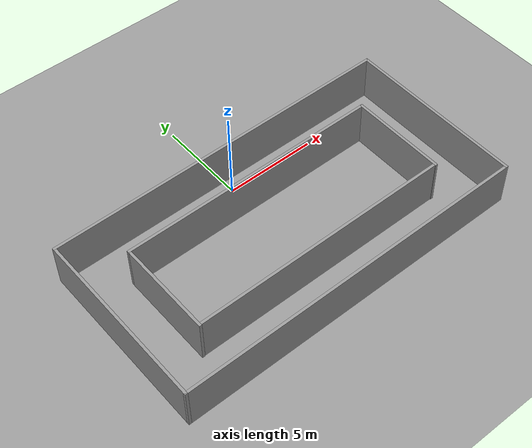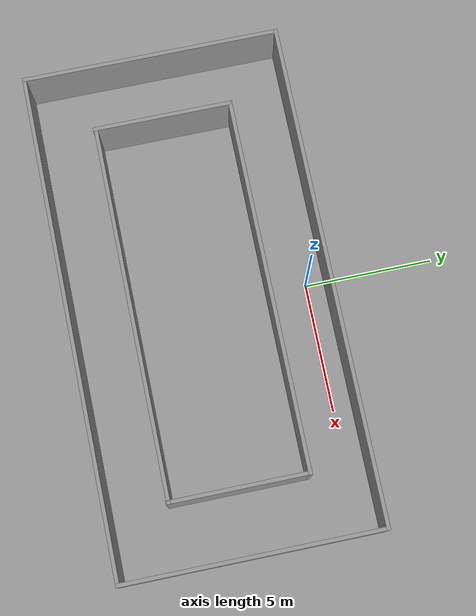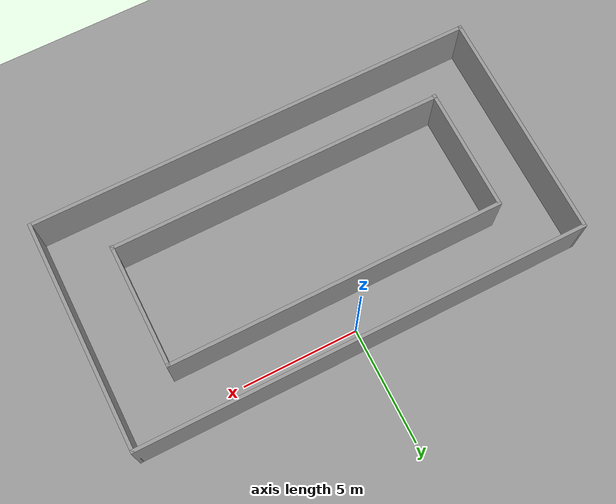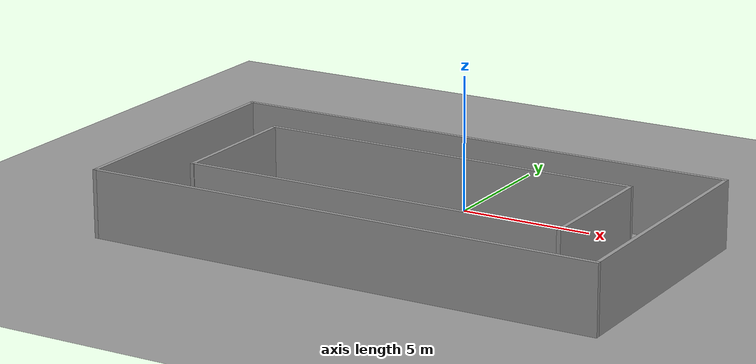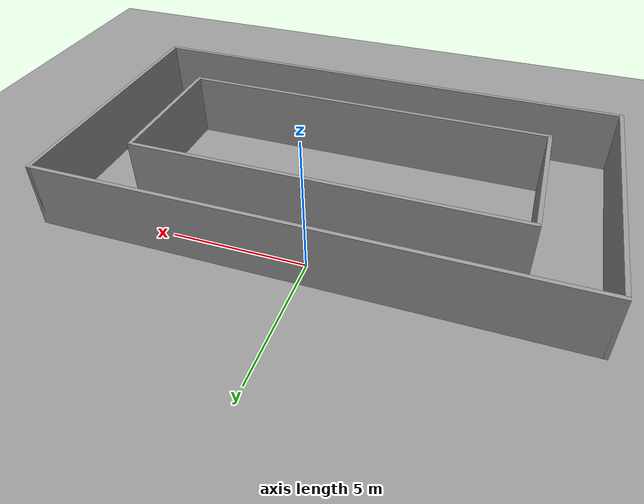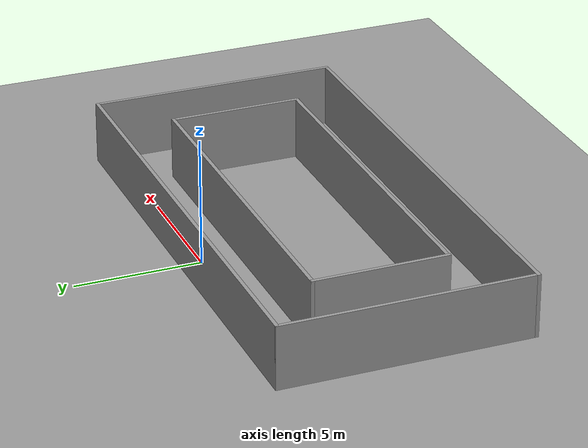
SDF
<sdf version="1.6">
 <world name="default">
  <light name="sun" type="directional">
   <pose>0 0 10 0 -0 0</pose>
   <diffuse>0.8 0.8 0.8 1</diffuse>
   <specular>0.2 0.2 0.2 1</specular>
   <attenuation>
    <range>1000</range>
    <constant>0.9</constant>
    <linear>0.01</linear>
    <quadratic>0.001</quadratic>
   </attenuation>
   <direction>0.5 0.1 -0.9</direction>
  </light>
  <scene><ambient>0.4 0.4 0.4 1</ambient><background>0.7 0.7 0.7 1</background><shadows>1</shadows></scene>
  <physics name="default_physics" default="0" type="ode">
   <max_step_size>0.01</max_step_size>
   <real_time_factor>1</real_time_factor>
   <real_time_update_rate>100</real_time_update_rate>
  </physics>
  <model name="ground_plane_0">
   <static>1</static>
   <link name="link">
    <collision name="collision">
     <geometry><plane><normal>0 0 1</normal><size>100 100</size></plane></geometry>
     <surface><friction><ode><mu>100</mu><mu2>50</mu2></ode></friction></surface>
    </collision>
    <visual name="visual">
     <cast_shadows>0</cast_shadows>
     <geometry><plane><normal>0 0 1</normal><size>100 100</size></plane></geometry>
     <material>
      <script><uri>file://media/materials/scripts/gazebo.material</uri><name>Gazebo/Grey</name></script>
     </material>
    </visual>
    <velocity_decay><linear>0</linear><angular>0</angular></velocity_decay>
   </link>
   <pose>0.497681 0 0 0 -0 0</pose>
  </model>
  <gravity>0 0 -9.8</gravity>
  <magnetic_field>6e-06 2.3e-05 -4.2e-05</magnetic_field>
  <atmosphere type="adiabatic"/>
  <spherical_coordinates>
   <surface_model>EARTH_WGS84</surface_model>
   <latitude_deg>0</latitude_deg>
   <longitude_deg>0</longitude_deg>
   <elevation>0</elevation>
   <heading_deg>0</heading_deg>
  </spherical_coordinates>
  <model name="track1">
   <pose>0.094377 -4.12894 0 0 -0 0</pose>
   <link name="Wall_1">
    <collision name="Wall_1_Collision">
     <geometry><box><size>19.5 0.15 2.5</size></box></geometry>
     <pose>0 0 1.25 0 -0 0</pose>
    </collision>
    <visual name="Wall_1_Visual">
     <pose>0 0 1.25 0 -0 0</pose>
     <geometry><box><size>19.5 0.15 2.5</size></box></geometry>
     <material>
      <script><uri>file://media/materials/scripts/gazebo.material</uri><name>Gazebo/Grey</name></script>
      <ambient>1 1 1 1</ambient>
     </material>
    </visual>
    <pose>0 4.925 0 0 -0 0</pose>
   </link>
   <link name="Wall_2">
    <collision name="Wall_2_Collision">
     <geometry><box><size>10 0.15 2.5</size></box></geometry>
     <pose>0 0 1.25 0 -0 0</pose>
    </collision>
    <visual name="Wall_2_Visual">
     <pose>0 0 1.25 0 -0 0</pose>
     <geometry><box><size>10 0.15 2.5</size></box></geometry>
     <material>
      <script><uri>file://media/materials/scripts/gazebo.material</uri><name>Gazebo/Grey</name></script>
      <ambient>1 1 1 1</ambient>
     </material>
    </visual>
    <pose>9.675 0 0 0 0 -1.5708</pose>
   </link>
   <link name="Wall_3">
    <collision name="Wall_3_Collision">
     <geometry><box><size>19.5 0.15 2.5</size></box></geometry>
     <pose>0 0 1.25 0 -0 0</pose>
    </collision>
    <visual name="Wall_3_Visual">
     <pose>0 0 1.25 0 -0 0</pose>
     <geometry><box><size>19.5 0.15 2.5</size></box></geometry>
     <material>
      <script><uri>file://media/materials/scripts/gazebo.material</uri><name>Gazebo/Grey</name></script>
      <ambient>1 1 1 1</ambient>
     </material>
    </visual>
    <pose>0 -4.925 0 0 -0 3.14159</pose>
   </link>
   <link name="Wall_4">
    <collision name="Wall_4_Collision">
     <geometry><box><size>10 0.15 2.5</size></box></geometry>
     <pose>0 0 1.25 0 -0 0</pose>
    </collision>
    <visual name="Wall_4_Visual">
     <pose>0 0 1.25 0 -0 0</pose>
     <geometry><box><size>10 0.15 2.5</size></box></geometry>
     <material>
      <script><uri>file://media/materials/scripts/gazebo.material</uri><name>Gazebo/Grey</name></script>
      <ambient>1 1 1 1</ambient>
     </material>
    </visual>
    <pose>-9.675 0 0 0 -0 1.5708</pose>
   </link>
   <link name="Wall_6">
    <collision name="Wall_6_Collision">
     <geometry><box><size>5.3616 0.15 2.5</size></box></geometry>
     <pose>0 0 1.25 0 -0 0</pose>
    </collision>
    <visual name="Wall_6_Visual">
     <pose>0 0 1.25 0 -0 0</pose>
     <geometry><box><size>5.3616 0.15 2.5</size></box></geometry>
     <material>
      <script><uri>file://media/materials/scripts/gazebo.material</uri><name>Gazebo/Grey</name></script>
      <ambient>1 1 1 1</ambient>
     </material>
    </visual>
    <pose>-7.17458 -0.021615 0 0 0 -1.5708</pose>
   </link>
   <link name="Wall_7">
    <collision name="Wall_7_Collision">
     <geometry><box><size>14.5 0.15 2.5</size></box></geometry>
     <pose>0 0 1.25 0 -0 0</pose>
    </collision>
    <visual name="Wall_7_Visual">
     <pose>0 0 1.25 0 -0 0</pose>
     <geometry><box><size>14.5 0.15 2.5</size></box></geometry>
     <material>
      <script><uri>file://media/materials/scripts/gazebo.material</uri><name>Gazebo/Grey</name></script>
      <ambient>1 1 1 1</ambient>
     </material>
    </visual>
    <pose>0.000419 -2.60081 0 0 -0 0</pose>
   </link>
   <link name="Wall_8">
    <collision name="Wall_8_Collision">
     <geometry><box><size>5.3616 0.15 2.5</size></box></geometry>
     <pose>0 0 1.25 0 -0 0</pose>
    </collision>
    <visual name="Wall_8_Visual">
     <pose>0 0 1.25 0 -0 0</pose>
     <geometry><box><size>5.3616 0.15 2.5</size></box></geometry>
     <material>
      <script><uri>file://media/materials/scripts/gazebo.material</uri><name>Gazebo/Grey</name></script>
      <ambient>1 1 1 1</ambient>
     </material>
    </visual>
    <pose>7.17542 -0.021615 0 0 -0 1.5708</pose>
   </link>
   <link name="Wall_9">
    <collision name="Wall_9_Collision">
     <geometry><box><size>14.5 0.15 2.5</size></box></geometry>
     <pose>0 0 1.25 0 -0 0</pose>
    </collision>
    <visual name="Wall_9_Visual">
     <pose>0 0 1.25 0 -0 0</pose>
     <geometry><box><size>14.5 0.15 2.5</size></box></geometry>
     <material>
      <script><uri>file://media/materials/scripts/gazebo.material</uri><name>Gazebo/Grey</name></script>
      <ambient>1 1 1 1</ambient>
     </material>
    </visual>
    <pose>0.000419 2.61078 0 0 -0 3.14159</pose>
   </link>
   <static>1</static>
  </model>
 </world>
</sdf>
